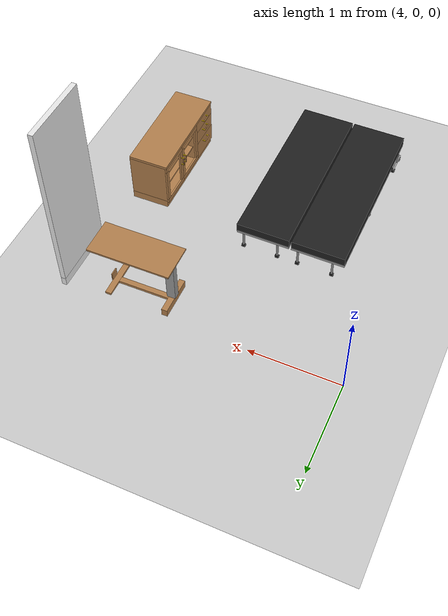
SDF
<sdf version="1.6">
 <world name="default">
  <model name="ground_plane">
   <static>1</static>
   <link name="link">
    <collision name="collision">
     <geometry><plane><normal>0 0 1</normal><size>100 100</size></plane></geometry>
     <surface><friction><ode><mu>100</mu><mu2>50</mu2></ode></friction></surface>
    </collision>
    <visual name="visual">
     <cast_shadows>0</cast_shadows>
     <geometry><plane><normal>0 0 1</normal><size>100 100</size></plane></geometry>
     <material>
      <script><uri>file://media/materials/scripts/gazebo.material</uri><name>Gazebo/Grey</name></script>
     </material>
    </visual>
   </link>
  </model>
  <model name="bed">
   <link name="link">
    <inertial>
     <mass>10</mass>
     <inertia><ixx>1</ixx><ixy>0</ixy><ixz>0</ixz><iyy>1</iyy><iyz>0</iyz><izz>1</izz></inertia>
    </inertial>
    <visual name="cushion">
     <pose>-0.295 -0.975 0.2875 0 -0 0</pose>
     <geometry><box><size>0.59 1.95 0.095</size></box></geometry>
     <material>
      <script>
       <uri>model://base_materials/cloth/scripts</uri>
       <uri>model://base_materials/cloth/textures</uri>
       <name>cloth/black</name>
      </script>
     </material>
    </visual>
    <collision name="collision_cushion">
     <pose>-0.295 -0.975 0.2875 0 -0 0</pose>
     <geometry><box><size>0.59 1.95 0.095</size></box></geometry>
    </collision>
    <visual name="top_frame">
     <pose>-0.295 -0.975 0.225 0 -0 0</pose>
     <geometry><box><size>0.59 1.95 0.03</size></box></geometry>
     <material>
      <script><uri>model://base_materials/color/scripts</uri><name>hsr_color/grey</name></script>
     </material>
    </visual>
    <collision name="collision_top_frame">
     <pose>-0.295 -0.975 0.225 0 -0 0</pose>
     <geometry><box><size>0.59 1.95 0.03</size></box></geometry>
    </collision>
    <visual name="right_front_pole">
     <pose>-0.075 -0.0125 0.125 0 -0 0</pose>
     <geometry><cylinder><radius>0.0125</radius><length>0.17</length></cylinder></geometry>
     <material>
      <script><uri>model://base_materials/color/scripts</uri><name>hsr_color/grey</name></script>
     </material>
    </visual>
    <collision name="collision_right_front_pole">
     <pose>-0.075 -0.0125 0.125 0 -0 0</pose>
     <geometry><cylinder><radius>0.0125</radius><length>0.17</length></cylinder></geometry>
    </collision>
    <visual name="right_front_caster">
     <pose>-0.075 -0.0125 0.02 0 1.57 0</pose>
     <geometry><cylinder><radius>0.02</radius><length>0.04</length></cylinder></geometry>
     <material><script><name>Gazebo/Black</name><uri>__default__</uri></script></material>
    </visual>
    <collision name="collision_right_front_caster">
     <pose>-0.075 -0.0125 0.02 0 1.57 0</pose>
     <geometry><cylinder><radius>0.02</radius><length>0.04</length></cylinder></geometry>
    </collision>
    <visual name="right_back_pole">
     <pose>-0.46 -0.0125 0.125 0 -0 0</pose>
     <geometry><cylinder><radius>0.0125</radius><length>0.17</length></cylinder></geometry>
     <material>
      <script><uri>model://base_materials/color/scripts</uri><name>hsr_color/grey</name></script>
     </material>
    </visual>
    <collision name="collision_right_back_pole">
     <pose>-0.46 -0.0125 0.125 0 -0 0</pose>
     <geometry><cylinder><radius>0.0125</radius><length>0.17</length></cylinder></geometry>
    </collision>
    <visual name="right_back_caster">
     <pose>-0.46 -0.0125 0.02 0 1.57 0</pose>
     <geometry><cylinder><radius>0.02</radius><length>0.04</length></cylinder></geometry>
     <material><script><name>Gazebo/Black</name><uri>__default__</uri></script></material>
    </visual>
    <collision name="collision_back_front_caster">
     <pose>-0.46 -0.0125 0.02 0 1.57 0</pose>
     <geometry><cylinder><radius>0.02</radius><length>0.04</length></cylinder></geometry>
    </collision>
    <visual name="center_front_pole">
     <pose>-0.0425 -0.975 0.105 0 -0 0</pose>
     <geometry><cylinder><radius>0.0125</radius><length>0.21</length></cylinder></geometry>
     <material>
      <script><uri>model://base_materials/color/scripts</uri><name>hsr_color/grey</name></script>
     </material>
    </visual>
    <collision name="collision_center_front_pole">
     <pose>-0.0425 -0.975 0.105 0 -0 0</pose>
     <geometry><cylinder><radius>0.0125</radius><length>0.17</length></cylinder></geometry>
    </collision>
    <visual name="center_back_pole">
     <pose>-0.5475 -0.975 0.105 0 -0 0</pose>
     <geometry><cylinder><radius>0.0125</radius><length>0.21</length></cylinder></geometry>
     <material>
      <script><uri>model://base_materials/color/scripts</uri><name>hsr_color/grey</name></script>
     </material>
    </visual>
    <collision name="collision_center_back_pole">
     <pose>-0.5475 -0.975 0.105 0 -0 0</pose>
     <geometry><cylinder><radius>0.0125</radius><length>0.17</length></cylinder></geometry>
    </collision>
    <visual name="left_front_horizon_pole">
     <pose>-0.01 -1.825 0.06 1.57 -0 0</pose>
     <geometry><cylinder><radius>0.01</radius><length>0.25</length></cylinder></geometry>
     <material>
      <script><uri>model://base_materials/color/scripts</uri><name>hsr_color/grey</name></script>
     </material>
    </visual>
    <collision name="collision_left_front_horizon_pole">
     <pose>-0.01 -1.825 0.06 1.57 -0 0</pose>
     <geometry><cylinder><radius>0.01</radius><length>0.25</length></cylinder></geometry>
    </collision>
    <visual name="left_front_vertical_pole">
     <pose>-0.01 -1.825 0.14 0 -0 0</pose>
     <geometry><cylinder><radius>0.01</radius><length>0.14</length></cylinder></geometry>
     <material>
      <script><uri>model://base_materials/color/scripts</uri><name>hsr_color/grey</name></script>
     </material>
    </visual>
    <collision name="collision_left_front_vertical_pole">
     <pose>-0.01 -1.825 0.14 0 -0 0</pose>
     <geometry><cylinder><radius>0.01</radius><length>0.14</length></cylinder></geometry>
    </collision>
    <visual name="left_front_caster_r">
     <pose>-0.02 -1.725 0.025 0 1.57 0</pose>
     <geometry><cylinder><radius>0.025</radius><length>0.04</length></cylinder></geometry>
     <material><script><name>Gazebo/Black</name><uri>__default__</uri></script></material>
    </visual>
    <collision name="collision_left_front_caster_r">
     <pose>-0.02 -1.725 0.025 0 1.57 0</pose>
     <geometry><cylinder><radius>0.025</radius><length>0.04</length></cylinder></geometry>
    </collision>
    <visual name="left_front_caster_l">
     <pose>-0.02 -1.925 0.025 0 1.57 0</pose>
     <geometry><cylinder><radius>0.025</radius><length>0.04</length></cylinder></geometry>
     <material><script><name>Gazebo/Black</name><uri>__default__</uri></script></material>
    </visual>
    <collision name="collision_left_front_caster_l">
     <pose>-0.02 -1.925 0.025 0 1.57 0</pose>
     <geometry><cylinder><radius>0.025</radius><length>0.04</length></cylinder></geometry>
    </collision>
    <visual name="left_back_horizon_pole">
     <pose>-0.58 -1.825 0.06 1.57 -0 0</pose>
     <geometry><cylinder><radius>0.01</radius><length>0.25</length></cylinder></geometry>
     <material>
      <script><uri>model://base_materials/color/scripts</uri><name>hsr_color/grey</name></script>
     </material>
    </visual>
    <collision name="collision_left_back_horizon_pole">
     <pose>-0.58 -1.825 0.06 1.57 -0 0</pose>
     <geometry><cylinder><radius>0.01</radius><length>0.25</length></cylinder></geometry>
    </collision>
    <visual name="left_back_vertical_pole">
     <pose>-0.58 -1.825 0.14 0 -0 0</pose>
     <geometry><cylinder><radius>0.01</radius><length>0.14</length></cylinder></geometry>
     <material>
      <script><uri>model://base_materials/color/scripts</uri><name>hsr_color/grey</name></script>
     </material>
    </visual>
    <collision name="collision_left_back_vertical_pole">
     <pose>-0.58 -1.825 0.14 0 -0 0</pose>
     <geometry><cylinder><radius>0.01</radius><length>0.14</length></cylinder></geometry>
    </collision>
    <visual name="left_back_caster_r">
     <pose>-0.57 -1.725 0.025 0 1.57 0</pose>
     <geometry><cylinder><radius>0.025</radius><length>0.04</length></cylinder></geometry>
     <material><script><name>Gazebo/Black</name><uri>__default__</uri></script></material>
    </visual>
    <collision name="collision_left_back_caster_r">
     <pose>-0.57 -1.725 0.025 0 1.57 0</pose>
     <geometry><cylinder><radius>0.025</radius><length>0.04</length></cylinder></geometry>
    </collision>
    <visual name="left_back_caster_l">
     <pose>-0.57 -1.925 0.025 0 1.57 0</pose>
     <geometry><cylinder><radius>0.025</radius><length>0.04</length></cylinder></geometry>
     <material><script><name>Gazebo/Black</name><uri>__default__</uri></script></material>
    </visual>
    <collision name="collision_left_back_caster_l">
     <pose>-0.57 -1.925 0.025 0 1.57 0</pose>
     <geometry><cylinder><radius>0.025</radius><length>0.04</length></cylinder></geometry>
    </collision>
    <velocity_decay><linear>0</linear><angular>0</angular></velocity_decay>
   </link>
   <static>1</static>
   <pose>5.03596 -1.20426 0 0 -0 0</pose>
  </model>
  <model name="bed_0">
   <link name="link">
    <inertial>
     <mass>10</mass>
     <inertia><ixx>1</ixx><ixy>0</ixy><ixz>0</ixz><iyy>1</iyy><iyz>0</iyz><izz>1</izz></inertia>
    </inertial>
    <visual name="cushion">
     <pose>-0.295 -0.975 0.2875 0 -0 0</pose>
     <geometry><box><size>0.59 1.95 0.095</size></box></geometry>
     <material>
      <script>
       <uri>model://base_materials/cloth/scripts</uri>
       <uri>model://base_materials/cloth/textures</uri>
       <name>cloth/black</name>
      </script>
     </material>
    </visual>
    <collision name="collision_cushion">
     <pose>-0.295 -0.975 0.2875 0 -0 0</pose>
     <geometry><box><size>0.59 1.95 0.095</size></box></geometry>
    </collision>
    <visual name="top_frame">
     <pose>-0.295 -0.975 0.225 0 -0 0</pose>
     <geometry><box><size>0.59 1.95 0.03</size></box></geometry>
     <material>
      <script><uri>model://base_materials/color/scripts</uri><name>hsr_color/grey</name></script>
     </material>
    </visual>
    <collision name="collision_top_frame">
     <pose>-0.295 -0.975 0.225 0 -0 0</pose>
     <geometry><box><size>0.59 1.95 0.03</size></box></geometry>
    </collision>
    <visual name="right_front_pole">
     <pose>-0.075 -0.0125 0.125 0 -0 0</pose>
     <geometry><cylinder><radius>0.0125</radius><length>0.17</length></cylinder></geometry>
     <material>
      <script><uri>model://base_materials/color/scripts</uri><name>hsr_color/grey</name></script>
     </material>
    </visual>
    <collision name="collision_right_front_pole">
     <pose>-0.075 -0.0125 0.125 0 -0 0</pose>
     <geometry><cylinder><radius>0.0125</radius><length>0.17</length></cylinder></geometry>
    </collision>
    <visual name="right_front_caster">
     <pose>-0.075 -0.0125 0.02 0 1.57 0</pose>
     <geometry><cylinder><radius>0.02</radius><length>0.04</length></cylinder></geometry>
     <material><script><name>Gazebo/Black</name><uri>__default__</uri></script></material>
    </visual>
    <collision name="collision_right_front_caster">
     <pose>-0.075 -0.0125 0.02 0 1.57 0</pose>
     <geometry><cylinder><radius>0.02</radius><length>0.04</length></cylinder></geometry>
    </collision>
    <visual name="right_back_pole">
     <pose>-0.46 -0.0125 0.125 0 -0 0</pose>
     <geometry><cylinder><radius>0.0125</radius><length>0.17</length></cylinder></geometry>
     <material>
      <script><uri>model://base_materials/color/scripts</uri><name>hsr_color/grey</name></script>
     </material>
    </visual>
    <collision name="collision_right_back_pole">
     <pose>-0.46 -0.0125 0.125 0 -0 0</pose>
     <geometry><cylinder><radius>0.0125</radius><length>0.17</length></cylinder></geometry>
    </collision>
    <visual name="right_back_caster">
     <pose>-0.46 -0.0125 0.02 0 1.57 0</pose>
     <geometry><cylinder><radius>0.02</radius><length>0.04</length></cylinder></geometry>
     <material><script><name>Gazebo/Black</name><uri>__default__</uri></script></material>
    </visual>
    <collision name="collision_back_front_caster">
     <pose>-0.46 -0.0125 0.02 0 1.57 0</pose>
     <geometry><cylinder><radius>0.02</radius><length>0.04</length></cylinder></geometry>
    </collision>
    <visual name="center_front_pole">
     <pose>-0.0425 -0.975 0.105 0 -0 0</pose>
     <geometry><cylinder><radius>0.0125</radius><length>0.21</length></cylinder></geometry>
     <material>
      <script><uri>model://base_materials/color/scripts</uri><name>hsr_color/grey</name></script>
     </material>
    </visual>
    <collision name="collision_center_front_pole">
     <pose>-0.0425 -0.975 0.105 0 -0 0</pose>
     <geometry><cylinder><radius>0.0125</radius><length>0.17</length></cylinder></geometry>
    </collision>
    <visual name="center_back_pole">
     <pose>-0.5475 -0.975 0.105 0 -0 0</pose>
     <geometry><cylinder><radius>0.0125</radius><length>0.21</length></cylinder></geometry>
     <material>
      <script><uri>model://base_materials/color/scripts</uri><name>hsr_color/grey</name></script>
     </material>
    </visual>
    <collision name="collision_center_back_pole">
     <pose>-0.5475 -0.975 0.105 0 -0 0</pose>
     <geometry><cylinder><radius>0.0125</radius><length>0.17</length></cylinder></geometry>
    </collision>
    <visual name="left_front_horizon_pole">
     <pose>-0.01 -1.825 0.06 1.57 -0 0</pose>
     <geometry><cylinder><radius>0.01</radius><length>0.25</length></cylinder></geometry>
     <material>
      <script><uri>model://base_materials/color/scripts</uri><name>hsr_color/grey</name></script>
     </material>
    </visual>
    <collision name="collision_left_front_horizon_pole">
     <pose>-0.01 -1.825 0.06 1.57 -0 0</pose>
     <geometry><cylinder><radius>0.01</radius><length>0.25</length></cylinder></geometry>
    </collision>
    <visual name="left_front_vertical_pole">
     <pose>-0.01 -1.825 0.14 0 -0 0</pose>
     <geometry><cylinder><radius>0.01</radius><length>0.14</length></cylinder></geometry>
     <material>
      <script><uri>model://base_materials/color/scripts</uri><name>hsr_color/grey</name></script>
     </material>
    </visual>
    <collision name="collision_left_front_vertical_pole">
     <pose>-0.01 -1.825 0.14 0 -0 0</pose>
     <geometry><cylinder><radius>0.01</radius><length>0.14</length></cylinder></geometry>
    </collision>
    <visual name="left_front_caster_r">
     <pose>-0.02 -1.725 0.025 0 1.57 0</pose>
     <geometry><cylinder><radius>0.025</radius><length>0.04</length></cylinder></geometry>
     <material><script><name>Gazebo/Black</name><uri>__default__</uri></script></material>
    </visual>
    <collision name="collision_left_front_caster_r">
     <pose>-0.02 -1.725 0.025 0 1.57 0</pose>
     <geometry><cylinder><radius>0.025</radius><length>0.04</length></cylinder></geometry>
    </collision>
    <visual name="left_front_caster_l">
     <pose>-0.02 -1.925 0.025 0 1.57 0</pose>
     <geometry><cylinder><radius>0.025</radius><length>0.04</length></cylinder></geometry>
     <material><script><name>Gazebo/Black</name><uri>__default__</uri></script></material>
    </visual>
    <collision name="collision_left_front_caster_l">
     <pose>-0.02 -1.925 0.025 0 1.57 0</pose>
     <geometry><cylinder><radius>0.025</radius><length>0.04</length></cylinder></geometry>
    </collision>
    <visual name="left_back_horizon_pole">
     <pose>-0.58 -1.825 0.06 1.57 -0 0</pose>
     <geometry><cylinder><radius>0.01</radius><length>0.25</length></cylinder></geometry>
     <material>
      <script><uri>model://base_materials/color/scripts</uri><name>hsr_color/grey</name></script>
     </material>
    </visual>
    <collision name="collision_left_back_horizon_pole">
     <pose>-0.58 -1.825 0.06 1.57 -0 0</pose>
     <geometry><cylinder><radius>0.01</radius><length>0.25</length></cylinder></geometry>
    </collision>
    <visual name="left_back_vertical_pole">
     <pose>-0.58 -1.825 0.14 0 -0 0</pose>
     <geometry><cylinder><radius>0.01</radius><length>0.14</length></cylinder></geometry>
     <material>
      <script><uri>model://base_materials/color/scripts</uri><name>hsr_color/grey</name></script>
     </material>
    </visual>
    <collision name="collision_left_back_vertical_pole">
     <pose>-0.58 -1.825 0.14 0 -0 0</pose>
     <geometry><cylinder><radius>0.01</radius><length>0.14</length></cylinder></geometry>
    </collision>
    <visual name="left_back_caster_r">
     <pose>-0.57 -1.725 0.025 0 1.57 0</pose>
     <geometry><cylinder><radius>0.025</radius><length>0.04</length></cylinder></geometry>
     <material><script><name>Gazebo/Black</name><uri>__default__</uri></script></material>
    </visual>
    <collision name="collision_left_back_caster_r">
     <pose>-0.57 -1.725 0.025 0 1.57 0</pose>
     <geometry><cylinder><radius>0.025</radius><length>0.04</length></cylinder></geometry>
    </collision>
    <visual name="left_back_caster_l">
     <pose>-0.57 -1.925 0.025 0 1.57 0</pose>
     <geometry><cylinder><radius>0.025</radius><length>0.04</length></cylinder></geometry>
     <material><script><name>Gazebo/Black</name><uri>__default__</uri></script></material>
    </visual>
    <collision name="collision_left_back_caster_l">
     <pose>-0.57 -1.925 0.025 0 1.57 0</pose>
     <geometry><cylinder><radius>0.025</radius><length>0.04</length></cylinder></geometry>
    </collision>
    <velocity_decay><linear>0</linear><angular>0</angular></velocity_decay>
   </link>
   <static>1</static>
   <pose>5.65052 -1.2052 0 0 -0 0</pose>
  </model>
  <model name="bed_table_0">
   <link name="link">
    <inertial>
     <pose>0 0.449 0.001 0 -0 0</pose>
     <mass>10</mass>
     <inertia><ixx>1</ixx><ixy>0</ixy><ixz>0</ixz><iyy>1</iyy><iyz>0</iyz><izz>1</izz></inertia>
    </inertial>
    <visual name="top_board">
     <pose>0 0.449 0.625 0 -0 0</pose>
     <geometry><box><size>0.398 0.898 0.02</size></box></geometry>
     <material>
      <script><uri>model://base_materials/wood/scripts/wood.material</uri><name>base_materials/wood</name></script>
     </material>
    </visual>
    <collision name="collision_top_board">
     <pose>0 0.449 0.625 0 -0 0</pose>
     <geometry><box><size>0.398 0.898 0.02</size></box></geometry>
    </collision>
    <visual name="right_pole">
     <pose>0 0.817 0.3515 0 -0 0</pose>
     <geometry><box><size>0.072 0.094 0.527</size></box></geometry>
     <material>
      <script><uri>model://base_materials/color/scripts</uri><name>hsr_color/grey</name></script>
     </material>
    </visual>
    <collision name="collision_right_pole">
     <pose>0 0.817 0.3515 0 -0 0</pose>
     <geometry><box><size>0.072 0.094 0.527</size></box></geometry>
    </collision>
    <visual name="right_bottom_pole">
     <pose>0 0.8225 0.044 0 -0 0</pose>
     <geometry><box><size>0.42 0.063 0.088</size></box></geometry>
     <material>
      <script><uri>model://base_materials/wood/scripts/wood.material</uri><name>base_materials/wood</name></script>
     </material>
    </visual>
    <collision name="collision_right_bottom_pole">
     <pose>0 0.8225 0.044 0 -0 0</pose>
     <geometry><box><size>0.42 0.063 0.088</size></box></geometry>
    </collision>
    <visual name="bottom_center_pole">
     <pose>0 0.502 0.03 0 -0 0</pose>
     <geometry><box><size>0.06 0.578 0.03</size></box></geometry>
     <material>
      <script><uri>model://base_materials/wood/scripts/wood.material</uri><name>base_materials/wood</name></script>
     </material>
    </visual>
    <collision name="collision_bottom_center_pole">
     <pose>0 0.502 0.03 0 -0 0</pose>
     <geometry><box><size>0.06 0.578 0.03</size></box></geometry>
    </collision>
    <visual name="left_bottom_pole">
     <pose>0 0.18 0.0325 0 -0 0</pose>
     <geometry><box><size>0.418 0.066 0.025</size></box></geometry>
     <material>
      <script><uri>model://base_materials/wood/scripts/wood.material</uri><name>base_materials/wood</name></script>
     </material>
    </visual>
    <collision name="collision_left_bottom_pole">
     <pose>0 0.18 0.0325 0 -0 0</pose>
     <geometry><box><size>0.418 0.066 0.025</size></box></geometry>
    </collision>
    <visual name="marker_0010">
     <pose>0 0.14 0.093 0 -0 0</pose>
     <geometry><box><size>0.09 0.001 0.09</size></box></geometry>
     <material>
      <script>
       <uri>model://bed_table/marker/0010/scripts</uri>
       <uri>model://bed_table/marker/0010/textures</uri>
       <name>Marker/0010</name>
      </script>
     </material>
    </visual>
    <collision name="collision_marker_0010">
     <pose>0 0.14 0.093 0 -0 0</pose>
     <geometry><box><size>0.09 0.001 0.09</size></box></geometry>
    </collision>
    <visual name="marker_0010_back_plate">
     <pose>0 0.146 0.093 0 -0 0</pose>
     <geometry><box><size>0.09 0.01 0.09</size></box></geometry>
     <material>
      <script><uri>model://base_materials/wood/scripts/wood.material</uri><name>base_materials/wood</name></script>
     </material>
    </visual>
    <collision name="collision_marker_0010_back_plate">
     <pose>0 0.146 0.093 0 -0 0</pose>
     <geometry><box><size>0.09 0.01 0.09</size></box></geometry>
    </collision>
    <velocity_decay><linear>0</linear><angular>0</angular></velocity_decay>
   </link>
   <static>1</static>
   <pose>6.76071 -0.254979 0 0 -0 1.57899</pose>
  </model>
  <model name="living_sideboard">
   <link name="link">
    <inertial>
     <mass>10</mass>
     <inertia><ixx>1</ixx><ixy>0</ixy><ixz>0</ixz><iyy>1</iyy><iyz>0</iyz><izz>1</izz></inertia>
    </inertial>
    <visual name="left_board">
     <pose>-0.23 0.01 0.3375 0 -0 0</pose>
     <geometry><box><size>0.42 0.02 0.495</size></box></geometry>
     <material>
      <script><uri>model://base_materials/wood/scripts/wood.material</uri><name>base_materials/wood</name></script>
     </material>
    </visual>
    <collision name="collision_left_board">
     <pose>-0.23 0.01 0.3375 0 -0 0</pose>
     <geometry><box><size>0.42 0.02 0.495</size></box></geometry>
    </collision>
    <visual name="back_board">
     <pose>-0.42 0.575 0.2925 0 -0 0</pose>
     <geometry><box><size>0.02 1.11 0.585</size></box></geometry>
     <material>
      <script><uri>model://base_materials/wood/scripts/wood.material</uri><name>base_materials/wood</name></script>
     </material>
    </visual>
    <collision name="collision_back_board">
     <pose>-0.42 0.575 0.2925 0 -0 0</pose>
     <geometry><box><size>0.02 1.11 0.585</size></box></geometry>
    </collision>
    <visual name="right_board">
     <pose>-0.23 1.14 0.3375 0 -0 0</pose>
     <geometry><box><size>0.42 0.02 0.495</size></box></geometry>
     <material>
      <script><uri>model://base_materials/wood/scripts/wood.material</uri><name>base_materials/wood</name></script>
     </material>
    </visual>
    <collision name="collision_right_board">
     <pose>-0.23 1.14 0.3375 0 -0 0</pose>
     <geometry><box><size>0.42 0.02 0.495</size></box></geometry>
    </collision>
    <visual name="center_vertical_board1">
     <pose>-0.23 0.74 0.3375 0 -0 0</pose>
     <geometry><box><size>0.42 0.02 0.495</size></box></geometry>
     <material>
      <script><uri>model://base_materials/wood/scripts/wood.material</uri><name>base_materials/wood</name></script>
     </material>
    </visual>
    <collision name="collision_center_vertical_board1">
     <pose>-0.23 0.74 0.3375 0 -0 0</pose>
     <geometry><box><size>0.42 0.02 0.495</size></box></geometry>
    </collision>
    <visual name="top_board">
     <pose>-0.22 0.575 0.6 0 -0 0</pose>
     <geometry><box><size>0.44 1.15 0.03</size></box></geometry>
     <material>
      <script><uri>model://base_materials/wood/scripts/wood.material</uri><name>base_materials/wood</name></script>
     </material>
    </visual>
    <collision name="collision_top_board">
     <pose>-0.22 0.575 0.6 0 -0 0</pose>
     <geometry><box><size>0.44 1.15 0.03</size></box></geometry>
    </collision>
    <visual name="bottom_board">
     <pose>-0.23 0.575 0.045 0 -0 0</pose>
     <geometry><box><size>0.42 1.15 0.09</size></box></geometry>
     <material>
      <script><uri>model://base_materials/wood/scripts/wood.material</uri><name>base_materials/wood</name></script>
     </material>
    </visual>
    <collision name="collision_bottom_board">
     <pose>-0.23 0.575 0.045 0 -0 0</pose>
     <geometry><box><size>0.42 1.15 0.09</size></box></geometry>
    </collision>
    <visual name="1st_shelf">
     <pose>-0.225 0.37 0.259 0 -0 0</pose>
     <geometry><box><size>0.36 0.72 0.018</size></box></geometry>
     <material>
      <script><uri>model://base_materials/wood/scripts/wood.material</uri><name>base_materials/wood</name></script>
     </material>
    </visual>
    <collision name="collision_1st_shelf">
     <pose>-0.225 0.37 0.259 0 -0 0</pose>
     <geometry><box><size>0.36 0.72 0.018</size></box></geometry>
    </collision>
    <visual name="2nd_shelf">
     <pose>-0.225 0.37 0.407 0 -0 0</pose>
     <geometry><box><size>0.36 0.72 0.018</size></box></geometry>
     <material>
      <script><uri>model://base_materials/wood/scripts/wood.material</uri><name>base_materials/wood</name></script>
     </material>
    </visual>
    <collision name="collision_2nd_shelf">
     <pose>-0.225 0.37 0.407 0 -0 0</pose>
     <geometry><box><size>0.36 0.72 0.018</size></box></geometry>
    </collision>
    <visual name="1st_drawer">
     <pose>-0.2025 0.95 0.52 0 -0 0</pose>
     <geometry><box><size>0.405 0.38 0.13</size></box></geometry>
     <material>
      <script><uri>model://base_materials/wood/scripts/wood.material</uri><name>base_materials/wood</name></script>
     </material>
    </visual>
    <collision name="collision_1st_drawer">
     <pose>-0.2025 0.95 0.52 0 -0 0</pose>
     <geometry><box><size>0.405 0.38 0.13</size></box></geometry>
    </collision>
    <visual name="1st_drawer_handle_l1">
     <pose>0.015 0.9015 0.535 3.14159 1.57079 3.14159</pose>
     <geometry><cylinder><radius>0.006</radius><length>0.03</length></cylinder></geometry>
     <material>
      <ambient>1 0.84314 0 1</ambient>
      <diffuse>1 0.84314 0 1</diffuse>
      <specular>0.1 0.1 0.1 1</specular>
     </material>
    </visual>
    <collision name="collision_1st_drawer_handle_l1">
     <pose>0.015 0.9015 0.535 3.14159 1.57079 3.14159</pose>
     <geometry><cylinder><radius>0.006</radius><length>0.03</length></cylinder></geometry>
    </collision>
    <visual name="1st_drawer_handle_l2">
     <pose>0.03 0.9015 0.535 0 -0 0</pose>
     <geometry><sphere><radius>0.006</radius></sphere></geometry>
     <material>
      <ambient>1 0.84314 0 1</ambient>
      <diffuse>1 0.84314 0 1</diffuse>
      <specular>0.1 0.1 0.1 1</specular>
     </material>
    </visual>
    <collision name="collision_1st_drawer_handle_l2">
     <pose>0.03 0.9015 0.535 0 -0 0</pose>
     <geometry><sphere><radius>0.006</radius></sphere></geometry>
    </collision>
    <visual name="1st_drawer_handle_r1">
     <pose>0.015 0.9985 0.535 3.14159 1.57079 3.14159</pose>
     <geometry><cylinder><radius>0.006</radius><length>0.03</length></cylinder></geometry>
     <material>
      <ambient>1 0.84314 0 1</ambient>
      <diffuse>1 0.84314 0 1</diffuse>
      <specular>0.1 0.1 0.1 1</specular>
     </material>
    </visual>
    <collision name="collision_1st_drawer_handle_r1">
     <pose>0.015 0.9985 0.535 3.14159 1.57079 3.14159</pose>
     <geometry><cylinder><radius>0.006</radius><length>0.03</length></cylinder></geometry>
    </collision>
    <visual name="1st_drawer_handle_r2">
     <pose>0.03 0.9985 0.535 0 -0 0</pose>
     <geometry><sphere><radius>0.006</radius></sphere></geometry>
     <material>
      <ambient>1 0.84314 0 1</ambient>
      <diffuse>1 0.84314 0 1</diffuse>
      <specular>0.1 0.1 0.1 1</specular>
     </material>
    </visual>
    <collision name="collision_1st_drawer_handle_r2">
     <pose>0.03 0.9985 0.535 0 -0 0</pose>
     <geometry><sphere><radius>0.006</radius></sphere></geometry>
    </collision>
    <visual name="1st_drawer_handle_center">
     <pose>0.03 0.95 0.535 1.5708 -0 0</pose>
     <geometry><cylinder><radius>0.006</radius><length>0.097</length></cylinder></geometry>
     <material>
      <script><uri>model://base_materials/wood/scripts/wood.material</uri><name>base_materials/wood</name></script>
     </material>
    </visual>
    <collision name="collision_1st_drawer_handle_center">
     <pose>0.03 0.95 0.535 1.5708 -0 0</pose>
     <geometry><cylinder><radius>0.006</radius><length>0.097</length></cylinder></geometry>
    </collision>
    <visual name="2nd_drawer">
     <pose>-0.2025 0.95 0.37 0 -0 0</pose>
     <geometry><box><size>0.405 0.38 0.17</size></box></geometry>
     <material>
      <script><uri>model://base_materials/wood/scripts/wood.material</uri><name>base_materials/wood</name></script>
     </material>
    </visual>
    <collision name="collision_2nd_drawer">
     <pose>-0.2025 0.95 0.37 0 -0 0</pose>
     <geometry><box><size>0.405 0.38 0.17</size></box></geometry>
    </collision>
    <visual name="2nd_drawer_handle_l1">
     <pose>0.015 0.9015 0.405 3.14159 1.57079 3.14159</pose>
     <geometry><cylinder><radius>0.006</radius><length>0.03</length></cylinder></geometry>
     <material>
      <ambient>1 0.84314 0 1</ambient>
      <diffuse>1 0.84314 0 1</diffuse>
      <specular>0.1 0.1 0.1 1</specular>
     </material>
    </visual>
    <collision name="collision_2nd_drawer_handle_l1">
     <pose>0.015 0.9015 0.405 3.14159 1.57079 3.14159</pose>
     <geometry><cylinder><radius>0.006</radius><length>0.03</length></cylinder></geometry>
    </collision>
    <visual name="2nd_drawer_handle_l2">
     <pose>0.03 0.9015 0.405 0 -0 0</pose>
     <geometry><sphere><radius>0.006</radius></sphere></geometry>
     <material>
      <ambient>1 0.84314 0 1</ambient>
      <diffuse>1 0.84314 0 1</diffuse>
      <specular>0.1 0.1 0.1 1</specular>
     </material>
    </visual>
    <collision name="collision_2nd_drawer_handle_l2">
     <pose>0.03 0.9015 0.405 0 -0 0</pose>
     <geometry><sphere><radius>0.006</radius></sphere></geometry>
    </collision>
    <visual name="2nd_drawer_handle_r1">
     <pose>0.015 0.9985 0.405 3.14159 1.57079 3.14159</pose>
     <geometry><cylinder><radius>0.006</radius><length>0.03</length></cylinder></geometry>
     <material>
      <ambient>1 0.84314 0 1</ambient>
      <diffuse>1 0.84314 0 1</diffuse>
      <specular>0.1 0.1 0.1 1</specular>
     </material>
    </visual>
    <collision name="collision_2nd_drawer_handle_r1">
     <pose>0.015 0.9985 0.405 3.14159 1.57079 3.14159</pose>
     <geometry><cylinder><radius>0.006</radius><length>0.03</length></cylinder></geometry>
    </collision>
    <visual name="2nd_drawer_handle_r2">
     <pose>0.03 0.9985 0.405 0 -0 0</pose>
     <geometry><sphere><radius>0.006</radius></sphere></geometry>
     <material>
      <ambient>1 0.84314 0 1</ambient>
      <diffuse>1 0.84314 0 1</diffuse>
      <specular>0.1 0.1 0.1 1</specular>
     </material>
    </visual>
    <collision name="collision_2nd_drawer_handle_r2">
     <pose>0.03 0.9985 0.405 0 -0 0</pose>
     <geometry><sphere><radius>0.006</radius></sphere></geometry>
    </collision>
    <visual name="2nd_drawer_handle_center">
     <pose>0.03 0.95 0.405 1.5708 -0 0</pose>
     <geometry><cylinder><radius>0.006</radius><length>0.097</length></cylinder></geometry>
     <material>
      <script><uri>model://base_materials/wood/scripts/wood.material</uri><name>base_materials/wood</name></script>
     </material>
    </visual>
    <collision name="collision_2nd_drawer_handle_center">
     <pose>0.03 0.95 0.405 1.5708 -0 0</pose>
     <geometry><cylinder><radius>0.006</radius><length>0.097</length></cylinder></geometry>
    </collision>
    <visual name="3rd_drawer">
     <pose>-0.2025 0.95 0.18 0 -0 0</pose>
     <geometry><box><size>0.405 0.38 0.21</size></box></geometry>
     <material>
      <script><uri>model://base_materials/wood/scripts/wood.material</uri><name>base_materials/wood</name></script>
     </material>
    </visual>
    <collision name="collision_3rd_drawer">
     <pose>-0.2025 0.95 0.18 0 -0 0</pose>
     <geometry><box><size>0.405 0.38 0.21</size></box></geometry>
    </collision>
    <visual name="3rd_drawer_handle_l1">
     <pose>0.015 0.9015 0.235 3.14159 1.57079 3.14159</pose>
     <geometry><cylinder><radius>0.006</radius><length>0.03</length></cylinder></geometry>
     <material>
      <ambient>1 0.84314 0 1</ambient>
      <diffuse>1 0.84314 0 1</diffuse>
      <specular>0.1 0.1 0.1 1</specular>
     </material>
    </visual>
    <collision name="collision_3rd_drawer_handle_l1">
     <pose>0.015 0.9015 0.235 3.14159 1.57079 3.14159</pose>
     <geometry><cylinder><radius>0.006</radius><length>0.03</length></cylinder></geometry>
    </collision>
    <visual name="3rd_drawer_handle_l2">
     <pose>0.03 0.9015 0.235 0 -0 0</pose>
     <geometry><sphere><radius>0.006</radius></sphere></geometry>
     <material>
      <ambient>1 0.84314 0 1</ambient>
      <diffuse>1 0.84314 0 1</diffuse>
      <specular>0.1 0.1 0.1 1</specular>
     </material>
    </visual>
    <collision name="collision_3rd_drawer_handle_l2">
     <pose>0.03 0.9015 0.235 0 -0 0</pose>
     <geometry><sphere><radius>0.006</radius></sphere></geometry>
    </collision>
    <visual name="3rd_drawer_handle_r1">
     <pose>0.015 0.9985 0.235 3.14159 1.57079 3.14159</pose>
     <geometry><cylinder><radius>0.006</radius><length>0.03</length></cylinder></geometry>
     <material>
      <ambient>1 0.84314 0 1</ambient>
      <diffuse>1 0.84314 0 1</diffuse>
      <specular>0.1 0.1 0.1 1</specular>
     </material>
    </visual>
    <collision name="collision_3rd_drawer_handle_r1">
     <pose>0.015 0.9985 0.235 3.14159 1.57079 3.14159</pose>
     <geometry><cylinder><radius>0.006</radius><length>0.03</length></cylinder></geometry>
    </collision>
    <visual name="3rd_drawer_handle_r2">
     <pose>0.03 0.9985 0.235 0 -0 0</pose>
     <geometry><sphere><radius>0.006</radius></sphere></geometry>
     <material>
      <ambient>1 0.84314 0 1</ambient>
      <diffuse>1 0.84314 0 1</diffuse>
      <specular>0.1 0.1 0.1 1</specular>
     </material>
    </visual>
    <collision name="collision_3rd_drawer_handle_r2">
     <pose>0.03 0.9985 0.235 0 -0 0</pose>
     <geometry><sphere><radius>0.006</radius></sphere></geometry>
    </collision>
    <visual name="3rd_drawer_handle_center">
     <pose>0.03 0.95 0.235 1.5708 -0 0</pose>
     <geometry><cylinder><radius>0.006</radius><length>0.097</length></cylinder></geometry>
     <material>
      <script><uri>model://base_materials/wood/scripts/wood.material</uri><name>base_materials/wood</name></script>
     </material>
    </visual>
    <collision name="collision_3rd_drawer_handle_center">
     <pose>0.03 0.95 0.235 1.5708 -0 0</pose>
     <geometry><cylinder><radius>0.006</radius><length>0.097</length></cylinder></geometry>
    </collision>
    <visual name="left_door_left_frame">
     <pose>-0.01 0.025 0.3275 0 -0 0</pose>
     <geometry><box><size>0.02 0.05 0.405</size></box></geometry>
     <material>
      <script><uri>model://base_materials/wood/scripts/wood.material</uri><name>base_materials/wood</name></script>
     </material>
    </visual>
    <collision name="collision_left_door_left_frame">
     <pose>-0.01 0.025 0.3275 0 -0 0</pose>
     <geometry><box><size>0.02 0.05 0.405</size></box></geometry>
    </collision>
    <visual name="left_door_right_frame">
     <pose>-0.01 0.355 0.3275 0 -0 0</pose>
     <geometry><box><size>0.02 0.05 0.405</size></box></geometry>
     <material>
      <script><uri>model://base_materials/wood/scripts/wood.material</uri><name>base_materials/wood</name></script>
     </material>
    </visual>
    <collision name="collision_left_door_right_frame">
     <pose>-0.01 0.355 0.3275 0 -0 0</pose>
     <geometry><box><size>0.02 0.05 0.405</size></box></geometry>
    </collision>
    <visual name="left_door_handle_top1">
     <pose>0.015 0.355 0.4475 3.14159 1.57079 3.14159</pose>
     <geometry><cylinder><radius>0.006</radius><length>0.03</length></cylinder></geometry>
     <material>
      <ambient>1 0.84314 0 1</ambient>
      <diffuse>1 0.84314 0 1</diffuse>
      <specular>0.1 0.1 0.1 1</specular>
     </material>
    </visual>
    <collision name="collision_left_door_handle_top1">
     <pose>0.015 0.355 0.4475 3.14159 1.57079 3.14159</pose>
     <geometry><cylinder><radius>0.006</radius><length>0.03</length></cylinder></geometry>
    </collision>
    <visual name="left_door_handle_top2">
     <pose>0.03 0.355 0.4475 0 -0 0</pose>
     <geometry><sphere><radius>0.006</radius></sphere></geometry>
     <material>
      <ambient>1 0.84314 0 1</ambient>
      <diffuse>1 0.84314 0 1</diffuse>
      <specular>0.1 0.1 0.1 1</specular>
     </material>
    </visual>
    <collision name="collision_left_door_handle_top2">
     <pose>0.03 0.355 0.4475 0 -0 0</pose>
     <geometry><sphere><radius>0.006</radius></sphere></geometry>
    </collision>
    <visual name="left_door_handle_bottom1">
     <pose>0.015 0.355 0.3505 3.14159 1.57079 3.14159</pose>
     <geometry><cylinder><radius>0.006</radius><length>0.03</length></cylinder></geometry>
     <material>
      <ambient>1 0.84314 0 1</ambient>
      <diffuse>1 0.84314 0 1</diffuse>
      <specular>0.1 0.1 0.1 1</specular>
     </material>
    </visual>
    <collision name="collision_left_door_handle_bottom1">
     <pose>0.015 0.355 0.3505 3.14159 1.57079 3.14159</pose>
     <geometry><cylinder><radius>0.006</radius><length>0.03</length></cylinder></geometry>
    </collision>
    <visual name="left_door_handle_bottom2">
     <pose>0.03 0.355 0.3505 0 -0 0</pose>
     <geometry><sphere><radius>0.006</radius></sphere></geometry>
     <material>
      <ambient>1 0.84314 0 1</ambient>
      <diffuse>1 0.84314 0 1</diffuse>
      <specular>0.1 0.1 0.1 1</specular>
     </material>
    </visual>
    <collision name="collision_left_door_handle_bottom2">
     <pose>0.03 0.355 0.3505 0 -0 0</pose>
     <geometry><sphere><radius>0.006</radius></sphere></geometry>
    </collision>
    <visual name="left_door_handle_center">
     <pose>0.03 0.355 0.399 0 -0 0</pose>
     <geometry><cylinder><radius>0.006</radius><length>0.097</length></cylinder></geometry>
     <material>
      <script><uri>model://base_materials/wood/scripts/wood.material</uri><name>base_materials/wood</name></script>
     </material>
    </visual>
    <collision name="collision_left_door_handle_center">
     <pose>0.03 0.355 0.399 0 -0 0</pose>
     <geometry><cylinder><radius>0.006</radius><length>0.097</length></cylinder></geometry>
    </collision>
    <visual name="left_door_top_frame">
     <pose>-0.01 0.19 0.5575 0 -0 0</pose>
     <geometry><box><size>0.02 0.38 0.055</size></box></geometry>
     <material>
      <script><uri>model://base_materials/wood/scripts/wood.material</uri><name>base_materials/wood</name></script>
     </material>
    </visual>
    <collision name="collision_left_door_top_frame">
     <pose>-0.01 0.19 0.5575 0 -0 0</pose>
     <geometry><box><size>0.02 0.38 0.055</size></box></geometry>
    </collision>
    <visual name="left_door_bottom_frame">
     <pose>-0.01 0.19 0.1 0 -0 0</pose>
     <geometry><box><size>0.02 0.38 0.05</size></box></geometry>
     <material>
      <script><uri>model://base_materials/wood/scripts/wood.material</uri><name>base_materials/wood</name></script>
     </material>
    </visual>
    <collision name="collision_left_door_bottom_frame">
     <pose>-0.01 0.19 0.1 0 -0 0</pose>
     <geometry><box><size>0.02 0.38 0.05</size></box></geometry>
    </collision>
    <visual name="right_door_left_frame">
     <pose>-0.01 0.405 0.3275 0 -0 0</pose>
     <geometry><box><size>0.02 0.05 0.405</size></box></geometry>
     <material>
      <script><uri>model://base_materials/wood/scripts/wood.material</uri><name>base_materials/wood</name></script>
     </material>
    </visual>
    <collision name="collision_right_door_left_frame">
     <pose>-0.01 0.405 0.3275 0 -0 0</pose>
     <geometry><box><size>0.02 0.05 0.405</size></box></geometry>
    </collision>
    <visual name="right_door_right_frame">
     <pose>-0.01 0.735 0.3275 0 -0 0</pose>
     <geometry><box><size>0.02 0.05 0.405</size></box></geometry>
     <material>
      <script><uri>model://base_materials/wood/scripts/wood.material</uri><name>base_materials/wood</name></script>
     </material>
    </visual>
    <collision name="collision_right_door_right_frame">
     <pose>-0.01 0.735 0.3275 0 -0 0</pose>
     <geometry><box><size>0.02 0.05 0.405</size></box></geometry>
    </collision>
    <visual name="right_door_top_frame">
     <pose>-0.01 0.57 0.5575 0 -0 0</pose>
     <geometry><box><size>0.02 0.38 0.055</size></box></geometry>
     <material>
      <script><uri>model://base_materials/wood/scripts/wood.material</uri><name>base_materials/wood</name></script>
     </material>
    </visual>
    <collision name="collision_right_door_top_frame">
     <pose>-0.01 0.57 0.5575 0 -0 0</pose>
     <geometry><box><size>0.02 0.38 0.055</size></box></geometry>
    </collision>
    <visual name="right_door_bottom_frame">
     <pose>-0.01 0.57 0.1 0 -0 0</pose>
     <geometry><box><size>0.02 0.38 0.05</size></box></geometry>
     <material>
      <script><uri>model://base_materials/wood/scripts/wood.material</uri><name>base_materials/wood</name></script>
     </material>
    </visual>
    <collision name="collision_right_door_bottom_frame">
     <pose>-0.01 0.57 0.1 0 -0 0</pose>
     <geometry><box><size>0.02 0.38 0.05</size></box></geometry>
    </collision>
    <visual name="right_door_handle_top1">
     <pose>0.015 0.405 0.4475 3.14159 1.57079 3.14159</pose>
     <geometry><cylinder><radius>0.006</radius><length>0.03</length></cylinder></geometry>
     <material>
      <ambient>1 0.84314 0 1</ambient>
      <diffuse>1 0.84314 0 1</diffuse>
      <specular>0.1 0.1 0.1 1</specular>
     </material>
    </visual>
    <collision name="collision_right_door_handle_top1">
     <pose>0.015 0.405 0.4475 3.14159 1.57079 3.14159</pose>
     <geometry><cylinder><radius>0.006</radius><length>0.03</length></cylinder></geometry>
    </collision>
    <visual name="right_door_handle_top2">
     <pose>0.03 0.405 0.4475 0 -0 0</pose>
     <geometry><sphere><radius>0.006</radius></sphere></geometry>
     <material>
      <ambient>1 0.84314 0 1</ambient>
      <diffuse>1 0.84314 0 1</diffuse>
      <specular>0.1 0.1 0.1 1</specular>
     </material>
    </visual>
    <collision name="collision_right_door_handle_top2">
     <pose>0.03 0.405 0.4475 0 -0 0</pose>
     <geometry><sphere><radius>0.006</radius></sphere></geometry>
    </collision>
    <visual name="right_door_handle_bottom1">
     <pose>0.015 0.405 0.3505 3.14159 1.57079 3.14159</pose>
     <geometry><cylinder><radius>0.006</radius><length>0.03</length></cylinder></geometry>
     <material>
      <ambient>1 0.84314 0 1</ambient>
      <diffuse>1 0.84314 0 1</diffuse>
      <specular>0.1 0.1 0.1 1</specular>
     </material>
    </visual>
    <collision name="collision_right_door_handle_bottom1">
     <pose>0.015 0.405 0.3505 3.14159 1.57079 3.14159</pose>
     <geometry><cylinder><radius>0.006</radius><length>0.03</length></cylinder></geometry>
    </collision>
    <visual name="right_door_handle_bottom2">
     <pose>0.03 0.405 0.3505 0 -0 0</pose>
     <geometry><sphere><radius>0.006</radius></sphere></geometry>
     <material>
      <ambient>1 0.84314 0 1</ambient>
      <diffuse>1 0.84314 0 1</diffuse>
      <specular>0.1 0.1 0.1 1</specular>
     </material>
    </visual>
    <collision name="collision_right_door_handle_bottom2">
     <pose>0.03 0.405 0.3505 0 -0 0</pose>
     <geometry><sphere><radius>0.006</radius></sphere></geometry>
    </collision>
    <visual name="right_door_handle_center">
     <pose>0.03 0.405 0.399 0 -0 0</pose>
     <geometry><cylinder><radius>0.006</radius><length>0.097</length></cylinder></geometry>
     <material>
      <script><uri>model://base_materials/wood/scripts/wood.material</uri><name>base_materials/wood</name></script>
     </material>
    </visual>
    <collision name="collision_right_door_handle_center">
     <pose>0.03 0.4 0.399 0 -0 0</pose>
     <geometry><cylinder><radius>0.006</radius><length>0.097</length></cylinder></geometry>
    </collision>
    <velocity_decay><linear>0</linear><angular>0</angular></velocity_decay>
   </link>
   <static>1</static>
   <pose>6.55431 -1.39864 0 0 0 -3.12984</pose>
  </model>
  <model name="full_wall_55_1300_2090_0_0">
   <link name="link">
    <pose>0 0.127869 0 0 -0 0</pose>
    <inertial>
     <mass>34.4639</mass>
     <inertia><ixx>13.0244</ixx><ixy>0</ixy><ixz>0</ixz><iyy>11.382</iyy><iyz>0</iyz><izz>1.65976</izz></inertia>
    </inertial>
    <velocity_decay><linear>0</linear><angular>0</angular></velocity_decay>
    <visual name="wall">
     <pose>0 0 1.095 0 -0 0</pose>
     <geometry><box><size>0.055 0.758213 1.99</size></box></geometry>
     <material>
      <script>
       <uri>model://base_materials/wall/scripts</uri>
       <uri>model://base_materials/wall/textures</uri>
       <name>wall/white_noise</name>
      </script>
      <ambient>1 1 1 1</ambient>
      <diffuse>0.5 0.5 0.5 1</diffuse>
      <specular>0 0 0 1</specular>
      <emissive>0 0 0 1</emissive>
     </material>
    </visual>
    <visual name="bottom_frame">
     <pose>0 0 0.05 0 -0 0</pose>
     <geometry><box><size>0.055 0.758213 0.1</size></box></geometry>
     <material>
      <script><uri>model://base_materials/color/scripts</uri><name>hsr_color/white</name></script>
      <ambient>1 1 1 1</ambient>
      <diffuse>0.5 0.5 0.5 1</diffuse>
      <specular>0 0 0 1</specular>
      <emissive>0 0 0 1</emissive>
     </material>
    </visual>
    <collision name="collision_bottom_frame">
     <pose>0 0 0.05 0 -0 0</pose>
     <geometry><box><size>0.055 0.758213 0.1</size></box></geometry>
     <surface>
      <friction>
       <ode><mu>1</mu><mu2>1</mu2><fdir1>0 0 0</fdir1><slip1>0</slip1><slip2>0</slip2></ode>
       <torsional>
        <coefficient>1</coefficient>
        <patch_radius>0</patch_radius>
        <surface_radius>0</surface_radius>
        <use_patch_radius>1</use_patch_radius>
        <ode><slip>0</slip></ode>
       </torsional>
      </friction>
      <bounce><restitution_coefficient>0</restitution_coefficient><threshold>1e+06</threshold></bounce>
      <contact>
       <collide_without_contact>0</collide_without_contact>
       <collide_without_contact_bitmask>1</collide_without_contact_bitmask>
       <collide_bitmask>1</collide_bitmask>
       <ode>
        <soft_cfm>0</soft_cfm>
        <soft_erp>0.2</soft_erp>
        <kp>1e+13</kp>
        <kd>1</kd>
        <max_vel>0.01</max_vel>
        <min_depth>0</min_depth>
       </ode>
       <bullet>
        <split_impulse>1</split_impulse>
        <split_impulse_penetration_threshold>-0.01</split_impulse_penetration_threshold>
        <soft_cfm>0</soft_cfm>
        <soft_erp>0.2</soft_erp>
        <kp>1e+13</kp>
        <kd>1</kd>
       </bullet>
      </contact>
     </surface>
    </collision>
    <collision name="collision_wall">
     <pose>0 0 1.095 0 -0 0</pose>
     <geometry><box><size>0.055 0.758213 1.99</size></box></geometry>
     <surface>
      <friction>
       <ode><mu>1</mu><mu2>1</mu2><fdir1>0 0 0</fdir1><slip1>0</slip1><slip2>0</slip2></ode>
       <torsional>
        <coefficient>1</coefficient>
        <patch_radius>0</patch_radius>
        <surface_radius>0</surface_radius>
        <use_patch_radius>1</use_patch_radius>
        <ode><slip>0</slip></ode>
       </torsional>
      </friction>
      <bounce><restitution_coefficient>0</restitution_coefficient><threshold>1e+06</threshold></bounce>
      <contact>
       <collide_without_contact>0</collide_without_contact>
       <collide_without_contact_bitmask>1</collide_without_contact_bitmask>
       <collide_bitmask>1</collide_bitmask>
       <ode>
        <soft_cfm>0</soft_cfm>
        <soft_erp>0.2</soft_erp>
        <kp>1e+13</kp>
        <kd>1</kd>
        <max_vel>0.01</max_vel>
        <min_depth>0</min_depth>
       </ode>
       <bullet>
        <split_impulse>1</split_impulse>
        <split_impulse_penetration_threshold>-0.01</split_impulse_penetration_threshold>
        <soft_cfm>0</soft_cfm>
        <soft_erp>0.2</soft_erp>
        <kp>1e+13</kp>
        <kd>1</kd>
       </bullet>
      </contact>
     </surface>
    </collision>
   </link>
   <static>1</static>
   <pose>7.0666 -0.49844 0 0 -0 0</pose>
  </model>
 </world>
</sdf>
